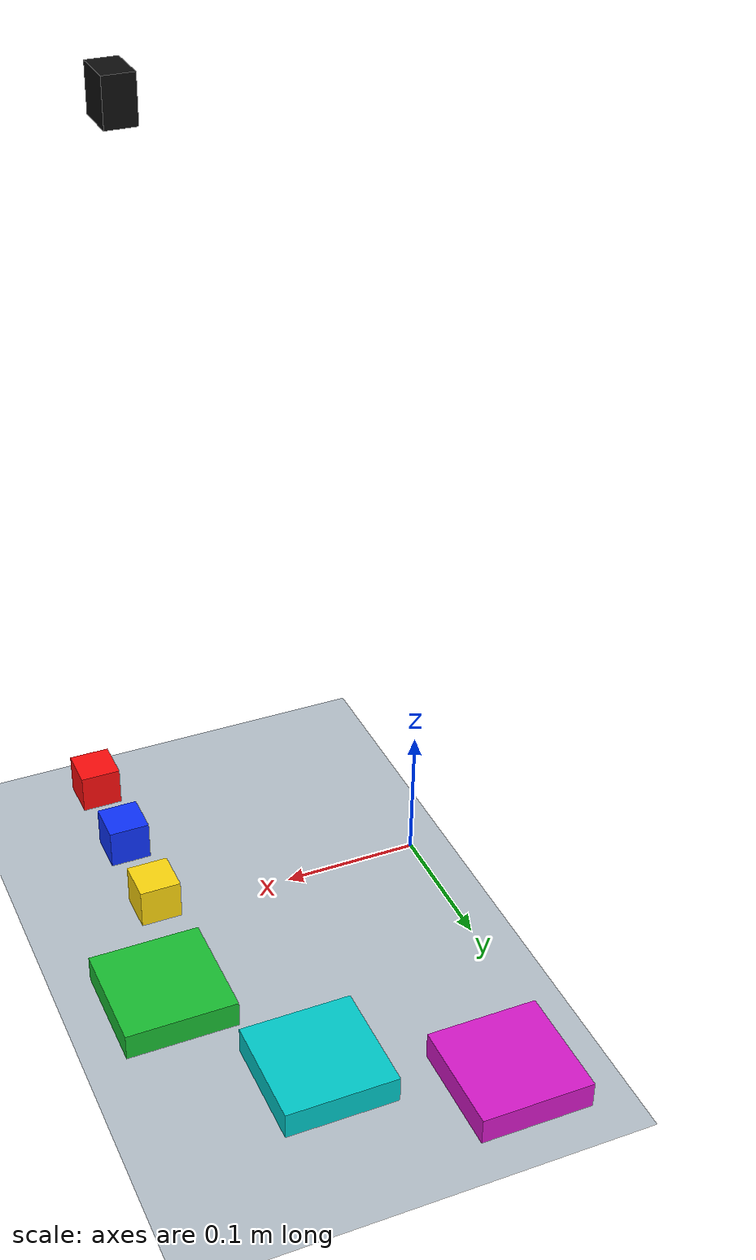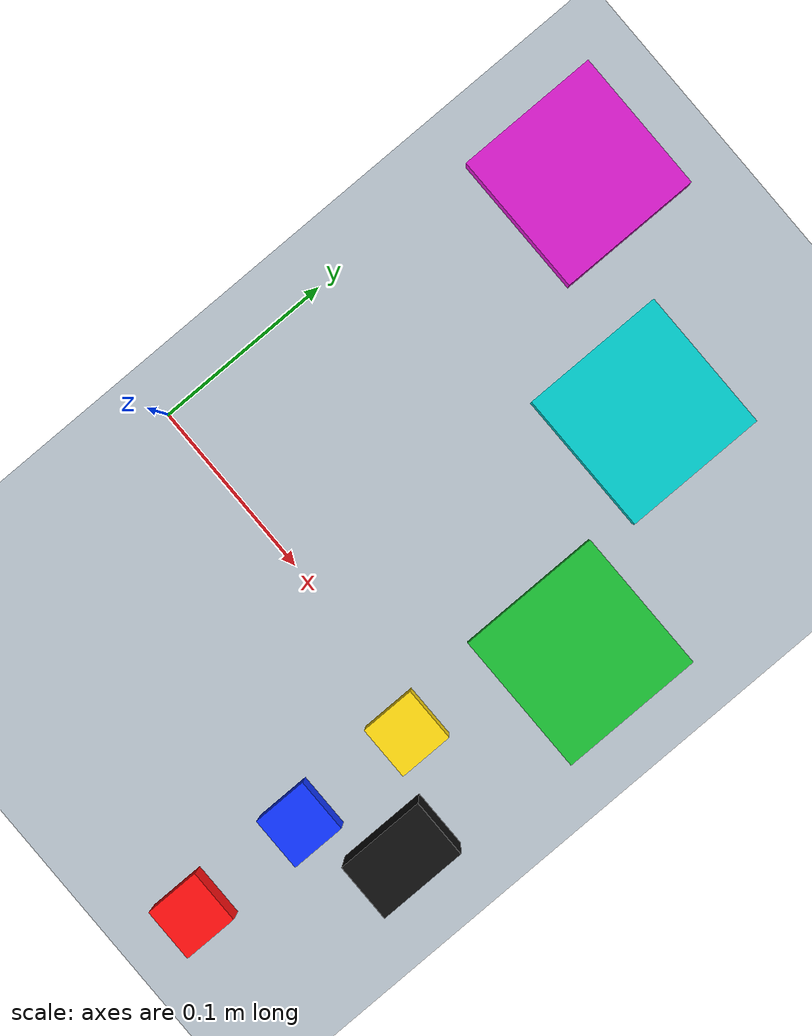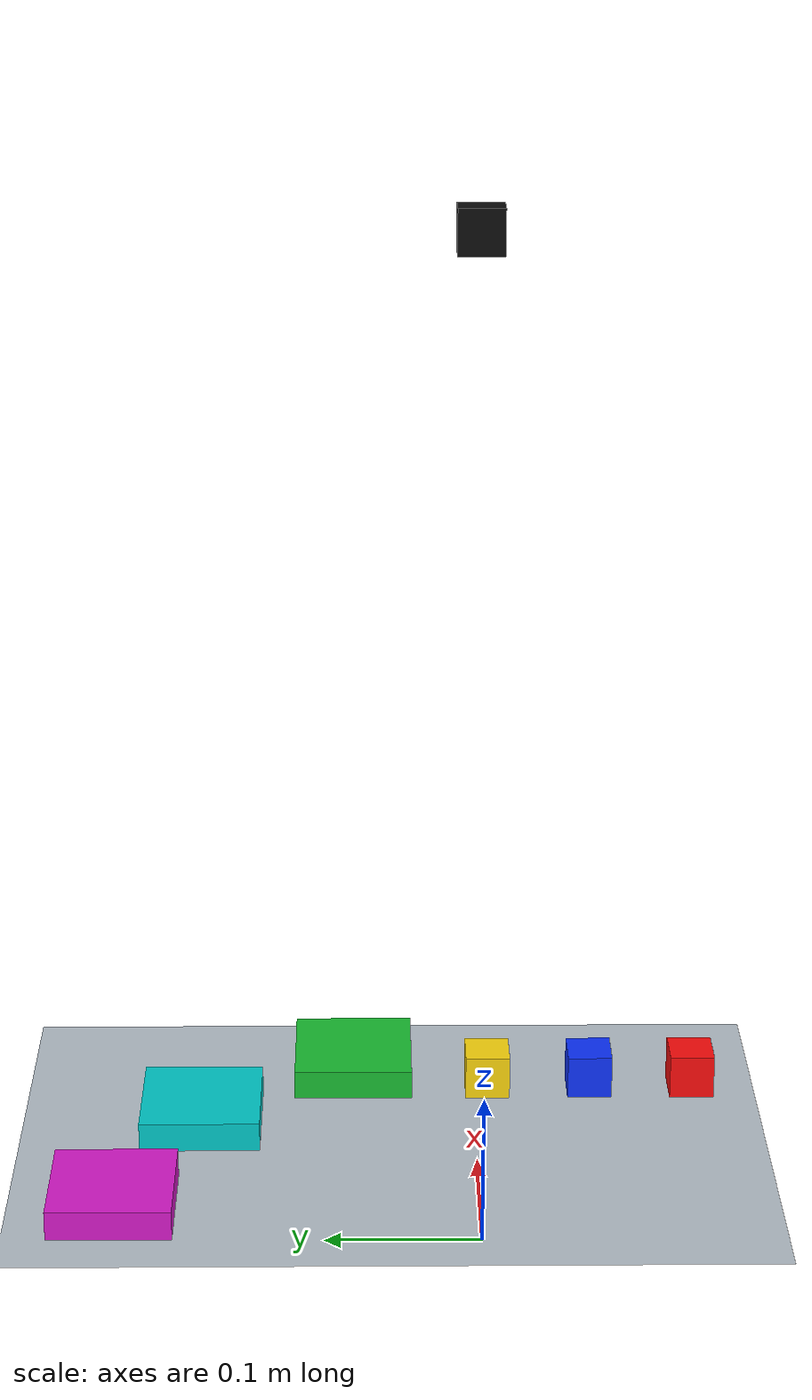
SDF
<?xml version="1.0"?>
<sdf version="1.9">
  <world name="default">
    <physics name="sim_physics" type="ignored">
      <max_step_size>0.004</max_step_size>
      <real_time_factor>1.0</real_time_factor>
    </physics>

    <!-- Without these systems Gazebo neither steps physics nor renders cameras. -->
    <plugin filename="gz-sim-physics-system" name="gz::sim::systems::Physics"/>
    <plugin filename="gz-sim-user-commands-system" name="gz::sim::systems::UserCommands"/>
    <plugin filename="gz-sim-scene-broadcaster-system" name="gz::sim::systems::SceneBroadcaster"/>
    <plugin filename="gz-sim-sensors-system" name="gz::sim::systems::Sensors">
      <render_engine>ogre2</render_engine>
    </plugin>

    <scene>
      <ambient>0.5 0.5 0.5 1</ambient>
      <background>0.8 0.85 0.9 1</background>
    </scene>

    <light name="sun" type="directional">
      <cast_shadows>true</cast_shadows>
      <pose>0 0 5 0 0 0</pose>
      <diffuse>0.8 0.8 0.8 1</diffuse>
      <specular>0.2 0.2 0.2 1</specular>
      <direction>-0.5 0.1 -0.9</direction>
    </light>

    <model name="ground_plane">
      <static>true</static>
      <link name="link">
        <collision name="collision">
          <geometry><plane><normal>0 0 1</normal><size>4 4</size></plane></geometry>
          <surface><friction><ode><mu>1.0</mu><mu2>1.0</mu2></ode></friction></surface>
        </collision>
        <visual name="visual">
          <geometry><plane><normal>0 0 1</normal><size>4 4</size></plane></geometry>
          <material>
            <ambient>0.72 0.76 0.8 1</ambient>
            <diffuse>0.72 0.76 0.8 1</diffuse>
          </material>
        </visual>
      </link>
    </model>

    <model name="red_cube">
      <pose>0.2 -0.15 0.015 0 0 0</pose>
      <link name="link">
        <inertial>
          <mass>0.02</mass>
          <inertia><ixx>3e-6</ixx><iyy>3e-6</iyy><izz>3e-6</izz></inertia>
        </inertial>
        <collision name="collision">
          <geometry><box><size>0.03 0.03 0.03</size></box></geometry>
          <surface><friction><ode><mu>1.5</mu><mu2>1.5</mu2></ode></friction></surface>
        </collision>
        <visual name="visual">
          <geometry><box><size>0.03 0.03 0.03</size></box></geometry>
          <material><ambient>1 0.05 0.05 1</ambient><diffuse>1 0.05 0.05 1</diffuse></material>
        </visual>
      </link>
    </model>

    <model name="blue_cube">
      <pose>0.2 -0.08 0.015 0 0 0</pose>
      <link name="link">
        <inertial>
          <mass>0.02</mass>
          <inertia><ixx>3e-6</ixx><iyy>3e-6</iyy><izz>3e-6</izz></inertia>
        </inertial>
        <collision name="collision">
          <geometry><box><size>0.03 0.03 0.03</size></box></geometry>
          <surface><friction><ode><mu>1.5</mu><mu2>1.5</mu2></ode></friction></surface>
        </collision>
        <visual name="visual">
          <geometry><box><size>0.03 0.03 0.03</size></box></geometry>
          <material><ambient>0.05 0.2 1 1</ambient><diffuse>0.05 0.2 1 1</diffuse></material>
        </visual>
      </link>
    </model>

    <model name="yellow_cube">
      <pose>0.2 -0.01 0.015 0 0 0</pose>
      <link name="link">
        <inertial>
          <mass>0.02</mass>
          <inertia><ixx>3e-6</ixx><iyy>3e-6</iyy><izz>3e-6</izz></inertia>
        </inertial>
        <collision name="collision">
          <geometry><box><size>0.03 0.03 0.03</size></box></geometry>
          <surface><friction><ode><mu>1.5</mu><mu2>1.5</mu2></ode></friction></surface>
        </collision>
        <visual name="visual">
          <geometry><box><size>0.03 0.03 0.03</size></box></geometry>
          <material><ambient>1 0.85 0.05 1</ambient><diffuse>1 0.85 0.05 1</diffuse></material>
        </visual>
      </link>
    </model>

    <!-- Bins on an arc of radius 0.24 m around the arm base (inside reach) -->
    <model name="bin_green">
      <static>true</static>
      <pose>0.2255 0.082 0.01 0 0 0</pose>
      <link name="link">
        <collision name="collision"><geometry><box><size>0.08 0.08 0.02</size></box></geometry></collision>
        <visual name="visual">
          <geometry><box><size>0.08 0.08 0.02</size></box></geometry>
          <material><ambient>0.1 0.75 0.2 1</ambient><diffuse>0.1 0.75 0.2 1</diffuse></material>
        </visual>
      </link>
    </model>

    <model name="bin_cyan">
      <static>true</static>
      <pose>0.154 0.184 0.01 0 0 0</pose>
      <link name="link">
        <collision name="collision"><geometry><box><size>0.08 0.08 0.02</size></box></geometry></collision>
        <visual name="visual">
          <geometry><box><size>0.08 0.08 0.02</size></box></geometry>
          <material><ambient>0.0 0.8 0.8 1</ambient><diffuse>0.0 0.8 0.8 1</diffuse></material>
        </visual>
      </link>
    </model>

    <model name="bin_magenta">
      <static>true</static>
      <pose>0.0417 0.236 0.01 0 0 0</pose>
      <link name="link">
        <collision name="collision"><geometry><box><size>0.08 0.08 0.02</size></box></geometry></collision>
        <visual name="visual">
          <geometry><box><size>0.08 0.08 0.02</size></box></geometry>
          <material><ambient>0.85 0.1 0.8 1</ambient><diffuse>0.85 0.1 0.8 1</diffuse></material>
        </visual>
      </link>
    </model>

    <!-- Fixed overhead camera looking straight down at the workspace -->
    <model name="overhead_camera">
      <static>true</static>
      <pose>0.20 0.0 0.60 0 1.5708 0</pose>
      <link name="link">
        <visual name="body">
          <geometry><box><size>0.03 0.03 0.02</size></box></geometry>
          <material><ambient>0.05 0.05 0.05 1</ambient><diffuse>0.05 0.05 0.05 1</diffuse></material>
        </visual>
        <sensor name="overhead_camera" type="camera">
          <always_on>true</always_on>
          <update_rate>15</update_rate>
          <visualize>false</visualize>
          <topic>vision/overhead/image_raw</topic>
          <camera>
            <horizontal_fov>1.0</horizontal_fov>
            <image><width>640</width><height>480</height><format>R8G8B8</format></image>
            <clip><near>0.05</near><far>3.0</far></clip>
          </camera>
        </sensor>
      </link>
    </model>
  </world>
</sdf>
